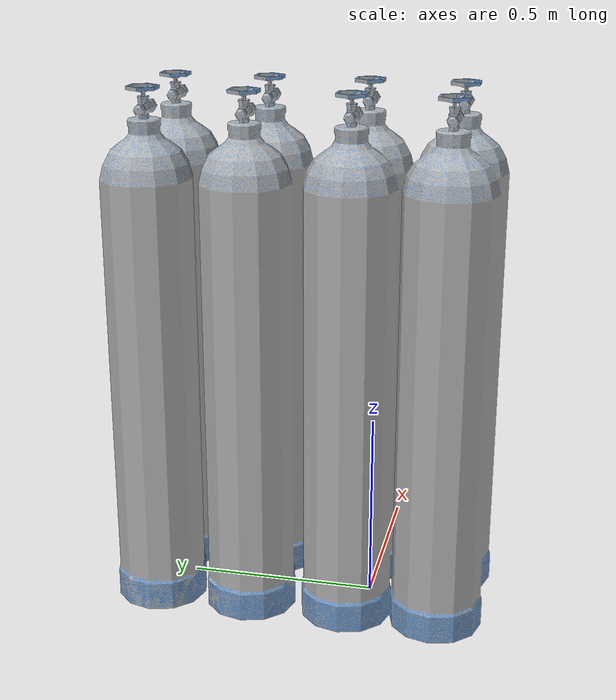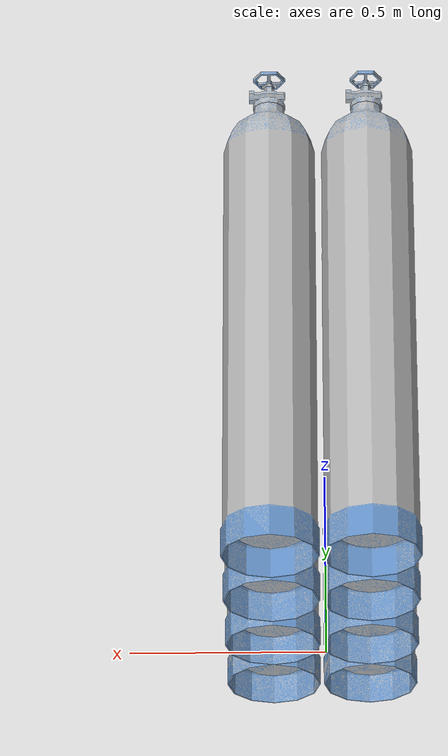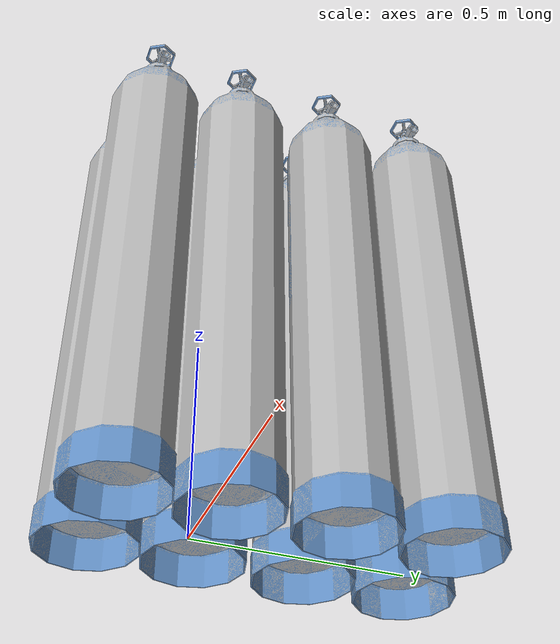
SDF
<?xml version="1.0" ?>
<sdf version="1.6">
  <model name="gas">
    <static>true</static>
    <link name="link">
      <collision name="collision">
        <geometry>
          <mesh>
            <scale>1 1 1</scale>
            <uri>model://gas/meshes/gas.dae</uri>
          </mesh>
        </geometry>
      </collision>
      <visual name="visual">
        <geometry>
          <mesh>
            <scale>1 1 1</scale>
            <uri>model://gas/meshes/gas.dae</uri>
          </mesh>
        </geometry>
      </visual>
    </link>
  </model>
</sdf>
